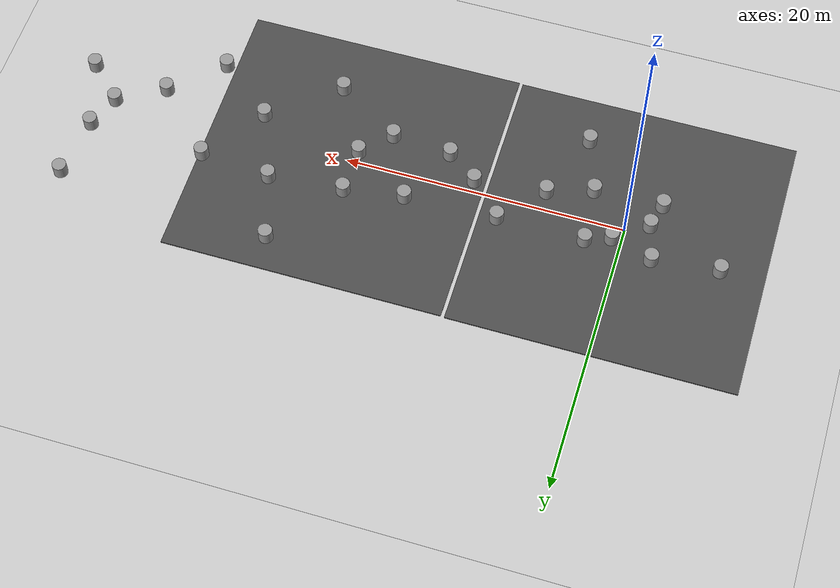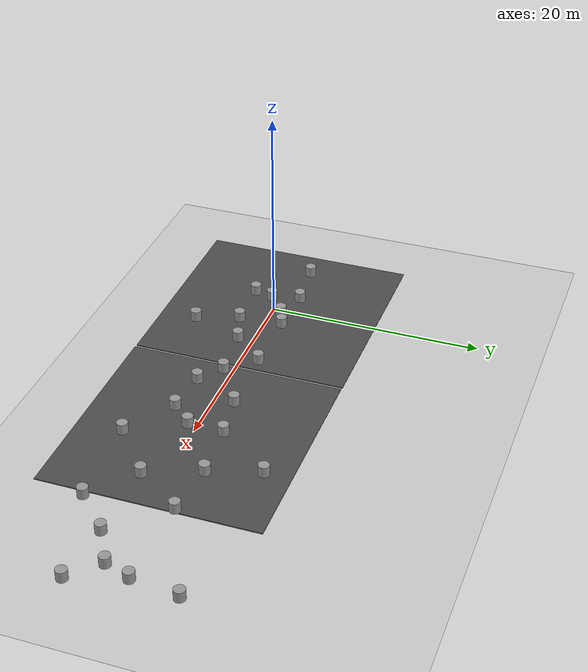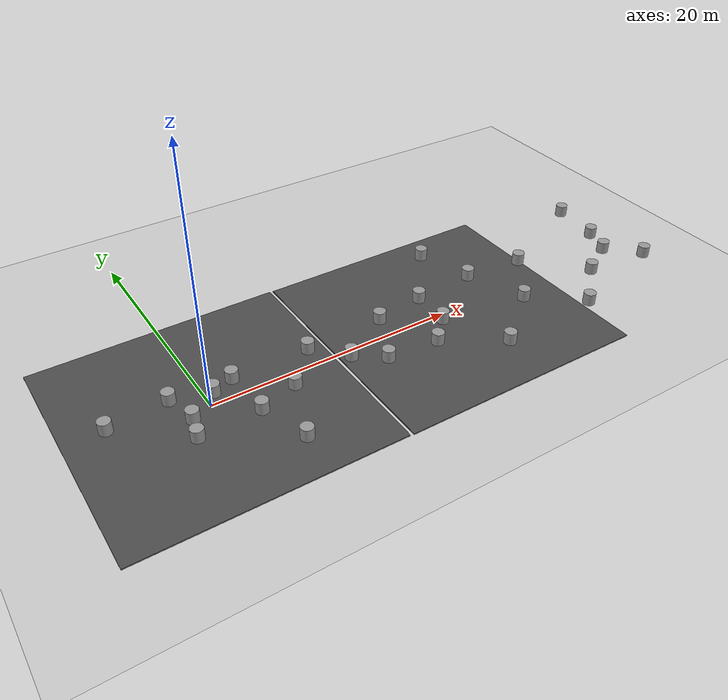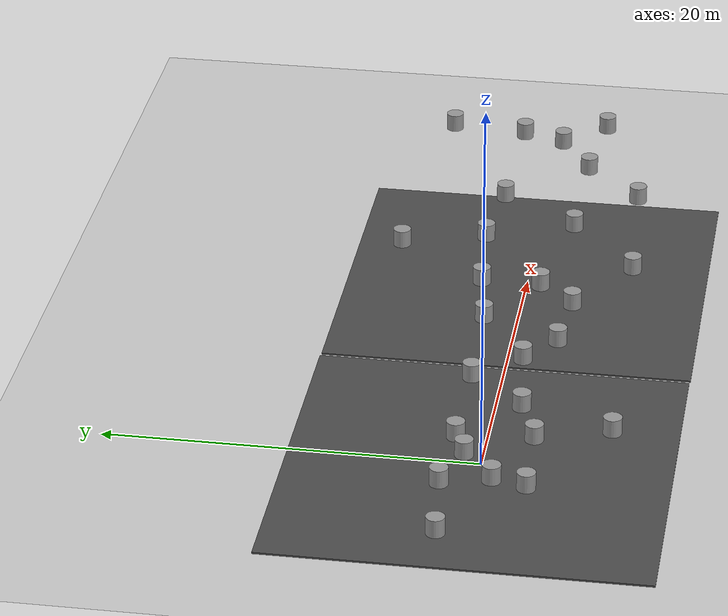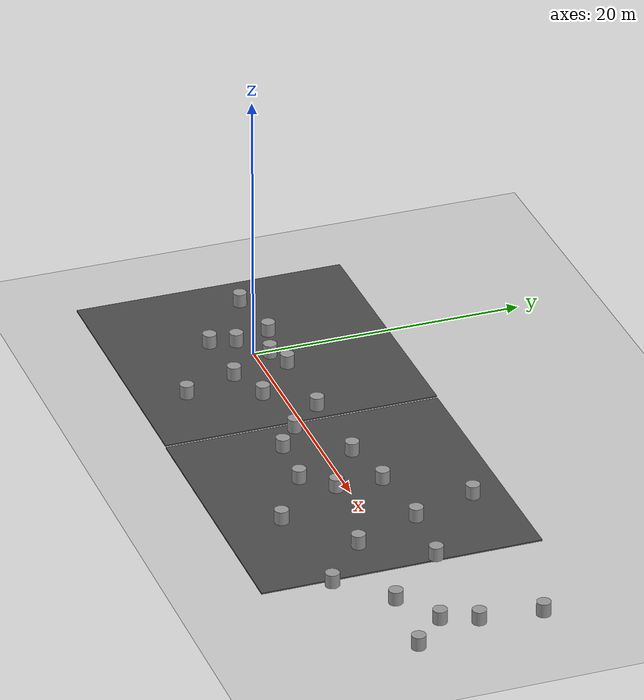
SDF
<sdf version="1.6">
 <world name="default">
  <model name="ground_plane">
   <static>1</static>
   <link name="link">
    <collision name="collision">
     <geometry><plane><normal>0 0 1</normal><size>100 100</size></plane></geometry>
     <surface>
      <contact><collide_bitmask>65535</collide_bitmask></contact>
      <friction><ode><mu>100</mu><mu2>50</mu2></ode></friction>
     </surface>
    </collision>
    <visual name="visual">
     <cast_shadows>0</cast_shadows>
     <geometry><plane><normal>0 0 1</normal><size>100 100</size></plane></geometry>
     <material>
      <script><uri>file://media/materials/scripts/gazebo.material</uri><name>Gazebo/Grey</name></script>
     </material>
    </visual>
   </link>
  </model>
  <model name="asphalt_plane">
   <static>1</static>
   <link name="link">
    <collision name="collision"><geometry><box><size>20 20 0.1</size></box></geometry></collision>
    <visual name="visual">
     <cast_shadows>0</cast_shadows>
     <geometry><box><size>20 20 0.1</size></box></geometry>
     <material>
      <script>
       <uri>model://asphalt_plane/materials/scripts</uri>
       <uri>model://asphalt_plane/materials/textures</uri>
       <name>vrc/asphalt</name>
      </script>
     </material>
    </visual>
   </link>
   <pose>-0.097341 0.103088 0 0 -0 0</pose>
  </model>
  <model name="unit_cylinder">
   <pose>-2.29857 1.87877 0.54999 0 -0 0.000226</pose>
   <link name="link">
    <inertial>
     <mass>1</mass>
     <inertia><ixx>0.145833</ixx><ixy>0</ixy><ixz>0</ixz><iyy>0.145833</iyy><iyz>0</iyz><izz>0.125</izz></inertia>
    </inertial>
    <collision name="collision">
     <geometry><cylinder><radius>0.5</radius><length>1</length></cylinder></geometry>
    </collision>
    <visual name="visual">
     <geometry><cylinder><radius>0.5</radius><length>1</length></cylinder></geometry>
     <material>
      <script><name>Gazebo/Grey</name><uri>file://media/materials/scripts/gazebo.material</uri></script>
     </material>
    </visual>
   </link>
  </model>
  <model name="unit_cylinder_0">
   <pose>-2.10481 -2.5783 0.549998 1e-06 -5e-06 0.000199</pose>
   <link name="link">
    <inertial>
     <mass>1</mass>
     <inertia><ixx>0.145833</ixx><ixy>0</ixy><ixz>0</ixz><iyy>0.145833</iyy><iyz>0</iyz><izz>0.125</izz></inertia>
    </inertial>
    <collision name="collision">
     <geometry><cylinder><radius>0.5</radius><length>1</length></cylinder></geometry>
    </collision>
    <visual name="visual">
     <geometry><cylinder><radius>0.5</radius><length>1</length></cylinder></geometry>
     <material>
      <script><name>Gazebo/Grey</name><uri>file://media/materials/scripts/gazebo.material</uri></script>
     </material>
    </visual>
   </link>
  </model>
  <model name="unit_cylinder_1">
   <pose>2.42535 1.65979 0.549998 4e-06 1e-06 0.000158</pose>
   <link name="link">
    <inertial>
     <mass>1</mass>
     <inertia><ixx>0.145833</ixx><ixy>0</ixy><ixz>0</ixz><iyy>0.145833</iyy><iyz>0</iyz><izz>0.125</izz></inertia>
    </inertial>
    <collision name="collision">
     <geometry><cylinder><radius>0.5</radius><length>1</length></cylinder></geometry>
    </collision>
    <visual name="visual">
     <geometry><cylinder><radius>0.5</radius><length>1</length></cylinder></geometry>
     <material>
      <script><name>Gazebo/Grey</name><uri>file://media/materials/scripts/gazebo.material</uri></script>
     </material>
    </visual>
   </link>
  </model>
  <model name="unit_cylinder_2">
   <pose>2.75314 -2.41556 0.55 0 -0 9.9e-05</pose>
   <link name="link">
    <inertial>
     <mass>1</mass>
     <inertia><ixx>0.145833</ixx><ixy>0</ixy><ixz>0</ixz><iyy>0.145833</iyy><iyz>0</iyz><izz>0.125</izz></inertia>
    </inertial>
    <collision name="collision">
     <geometry><cylinder><radius>0.5</radius><length>1</length></cylinder></geometry>
    </collision>
    <visual name="visual">
     <geometry><cylinder><radius>0.5</radius><length>1</length></cylinder></geometry>
     <material>
      <script><name>Gazebo/Grey</name><uri>file://media/materials/scripts/gazebo.material</uri></script>
     </material>
    </visual>
   </link>
  </model>
  <model name="unit_cylinder_3">
   <pose>-1.63258 -0.739259 0.54999 0 -0 0.000108</pose>
   <link name="link">
    <inertial>
     <mass>1</mass>
     <inertia><ixx>0.145833</ixx><ixy>0</ixy><ixz>0</ixz><iyy>0.145833</iyy><iyz>0</iyz><izz>0.125</izz></inertia>
    </inertial>
    <collision name="collision">
     <geometry><cylinder><radius>0.5</radius><length>1</length></cylinder></geometry>
    </collision>
    <visual name="visual">
     <geometry><cylinder><radius>0.5</radius><length>1</length></cylinder></geometry>
     <material>
      <script><name>Gazebo/Grey</name><uri>file://media/materials/scripts/gazebo.material</uri></script>
     </material>
    </visual>
   </link>
  </model>
  <model name="unit_cylinder_4">
   <pose>4.05995 -6.35999 0.549991 2e-06 -0 -7.6e-05</pose>
   <link name="link">
    <inertial>
     <mass>1</mass>
     <inertia><ixx>0.145833</ixx><ixy>0</ixy><ixz>0</ixz><iyy>0.145833</iyy><iyz>0</iyz><izz>0.125</izz></inertia>
    </inertial>
    <collision name="collision">
     <geometry><cylinder><radius>0.5</radius><length>1</length></cylinder></geometry>
    </collision>
    <visual name="visual">
     <geometry><cylinder><radius>0.5</radius><length>1</length></cylinder></geometry>
     <material>
      <script><name>Gazebo/Grey</name><uri>file://media/materials/scripts/gazebo.material</uri></script>
     </material>
    </visual>
   </link>
  </model>
  <model name="unit_cylinder_5">
   <pose>0.673012 0.983979 0.550002 1e-06 3e-06 0.000134</pose>
   <link name="link">
    <inertial>
     <mass>1</mass>
     <inertia><ixx>0.145833</ixx><ixy>0</ixy><ixz>0</ixz><iyy>0.145833</iyy><iyz>0</iyz><izz>0.125</izz></inertia>
    </inertial>
    <collision name="collision">
     <geometry><cylinder><radius>0.5</radius><length>1</length></cylinder></geometry>
    </collision>
    <visual name="visual">
     <geometry><cylinder><radius>0.5</radius><length>1</length></cylinder></geometry>
     <material>
      <script><name>Gazebo/Grey</name><uri>file://media/materials/scripts/gazebo.material</uri></script>
     </material>
    </visual>
   </link>
  </model>
  <model name="unit_cylinder_6">
   <pose>5.91371 -1.37834 0.549996 -7e-06 -1e-06 7.1e-05</pose>
   <link name="link">
    <inertial>
     <mass>1</mass>
     <inertia><ixx>0.145833</ixx><ixy>0</ixy><ixz>0</ixz><iyy>0.145833</iyy><iyz>0</iyz><izz>0.125</izz></inertia>
    </inertial>
    <collision name="collision">
     <geometry><cylinder><radius>0.5</radius><length>1</length></cylinder></geometry>
    </collision>
    <visual name="visual">
     <geometry><cylinder><radius>0.5</radius><length>1</length></cylinder></geometry>
     <material>
      <script><name>Gazebo/Grey</name><uri>file://media/materials/scripts/gazebo.material</uri></script>
     </material>
    </visual>
   </link>
  </model>
  <model name="unit_cylinder_7">
   <pose>8.66093 1.65139 0.549993 -4e-06 -0 -0.000485</pose>
   <link name="link">
    <inertial>
     <mass>1</mass>
     <inertia><ixx>0.145833</ixx><ixy>0</ixy><ixz>0</ixz><iyy>0.145833</iyy><iyz>0</iyz><izz>0.125</izz></inertia>
    </inertial>
    <collision name="collision">
     <geometry><cylinder><radius>0.5</radius><length>1</length></cylinder></geometry>
    </collision>
    <visual name="visual">
     <geometry><cylinder><radius>0.5</radius><length>1</length></cylinder></geometry>
     <material>
      <script><name>Gazebo/Grey</name><uri>file://media/materials/scripts/gazebo.material</uri></script>
     </material>
    </visual>
   </link>
  </model>
  <model name="unit_cylinder_8">
   <pose>-6.99343 1.38184 0.549998 4e-06 1e-06 -0.000402</pose>
   <link name="link">
    <inertial>
     <mass>1</mass>
     <inertia><ixx>0.145833</ixx><ixy>0</ixy><ixz>0</ixz><iyy>0.145833</iyy><iyz>0</iyz><izz>0.125</izz></inertia>
    </inertial>
    <collision name="collision">
     <geometry><cylinder><radius>0.5</radius><length>1</length></cylinder></geometry>
    </collision>
    <visual name="visual">
     <geometry><cylinder><radius>0.5</radius><length>1</length></cylinder></geometry>
     <material>
      <script><name>Gazebo/Grey</name><uri>file://media/materials/scripts/gazebo.material</uri></script>
     </material>
    </visual>
   </link>
  </model>
  <model name="unit_cylinder_9">
   <pose>10.9698 -0.817129 0.55 -0 1e-06 -0.000395</pose>
   <link name="link">
    <inertial>
     <mass>1</mass>
     <inertia><ixx>0.145833</ixx><ixy>0</ixy><ixz>0</ixz><iyy>0.145833</iyy><iyz>0</iyz><izz>0.125</izz></inertia>
    </inertial>
    <collision name="collision">
     <geometry><cylinder><radius>0.5</radius><length>1</length></cylinder></geometry>
    </collision>
    <visual name="visual">
     <geometry><cylinder><radius>0.5</radius><length>1</length></cylinder></geometry>
     <material>
      <script><name>Gazebo/Grey</name><uri>file://media/materials/scripts/gazebo.material</uri></script>
     </material>
    </visual>
   </link>
  </model>
  <model name="asphalt_plane_0">
   <static>1</static>
   <link name="link">
    <collision name="collision"><geometry><box><size>20 20 0.1</size></box></geometry></collision>
    <visual name="visual">
     <cast_shadows>0</cast_shadows>
     <geometry><box><size>20 20 0.1</size></box></geometry>
     <material>
      <script>
       <uri>model://asphalt_plane/materials/scripts</uri>
       <uri>model://asphalt_plane/materials/textures</uri>
       <name>vrc/asphalt</name>
      </script>
     </material>
    </visual>
   </link>
   <pose>20.1677 0.054455 0 0 -0 0</pose>
  </model>
  <model name="unit_cylinder_10">
   <pose>15.2464 1.85956 0.549997 6e-06 2e-06 8.7e-05</pose>
   <link name="link">
    <inertial>
     <mass>1</mass>
     <inertia><ixx>0.145833</ixx><ixy>0</ixy><ixz>0</ixz><iyy>0.145833</iyy><iyz>0</iyz><izz>0.125</izz></inertia>
    </inertial>
    <collision name="collision">
     <geometry><cylinder><radius>0.5</radius><length>1</length></cylinder></geometry>
    </collision>
    <visual name="visual">
     <geometry><cylinder><radius>0.5</radius><length>1</length></cylinder></geometry>
     <material>
      <script><name>Gazebo/Grey</name><uri>file://media/materials/scripts/gazebo.material</uri></script>
     </material>
    </visual>
   </link>
  </model>
  <model name="unit_cylinder_11">
   <pose>17.449 -2.78219 0.550001 0 1e-06 0.000253</pose>
   <link name="link">
    <inertial>
     <mass>1</mass>
     <inertia><ixx>0.145833</ixx><ixy>0</ixy><ixz>0</ixz><iyy>0.145833</iyy><iyz>0</iyz><izz>0.125</izz></inertia>
    </inertial>
    <collision name="collision">
     <geometry><cylinder><radius>0.5</radius><length>1</length></cylinder></geometry>
    </collision>
    <visual name="visual">
     <geometry><cylinder><radius>0.5</radius><length>1</length></cylinder></geometry>
     <material>
      <script><name>Gazebo/Grey</name><uri>file://media/materials/scripts/gazebo.material</uri></script>
     </material>
    </visual>
   </link>
  </model>
  <model name="unit_cylinder_12">
   <pose>19.4846 2.53262 0.549997 6e-06 3e-06 7.7e-05</pose>
   <link name="link">
    <inertial>
     <mass>1</mass>
     <inertia><ixx>0.145833</ixx><ixy>0</ixy><ixz>0</ixz><iyy>0.145833</iyy><iyz>0</iyz><izz>0.125</izz></inertia>
    </inertial>
    <collision name="collision">
     <geometry><cylinder><radius>0.5</radius><length>1</length></cylinder></geometry>
    </collision>
    <visual name="visual">
     <geometry><cylinder><radius>0.5</radius><length>1</length></cylinder></geometry>
     <material>
      <script><name>Gazebo/Grey</name><uri>file://media/materials/scripts/gazebo.material</uri></script>
     </material>
    </visual>
   </link>
  </model>
  <model name="unit_cylinder_13">
   <pose>19.4058 -0.787666 0.549991 -1e-06 -2e-06 0.000177</pose>
   <link name="link">
    <inertial>
     <mass>1</mass>
     <inertia><ixx>0.145833</ixx><ixy>0</ixy><ixz>0</ixz><iyy>0.145833</iyy><iyz>0</iyz><izz>0.125</izz></inertia>
    </inertial>
    <collision name="collision">
     <geometry><cylinder><radius>0.5</radius><length>1</length></cylinder></geometry>
    </collision>
    <visual name="visual">
     <geometry><cylinder><radius>0.5</radius><length>1</length></cylinder></geometry>
     <material>
      <script><name>Gazebo/Grey</name><uri>file://media/materials/scripts/gazebo.material</uri></script>
     </material>
    </visual>
   </link>
  </model>
  <model name="unit_cylinder_14">
   <pose>13.1817 -2.45769 0.550001 -3e-06 -0 -0.000224</pose>
   <link name="link">
    <inertial>
     <mass>1</mass>
     <inertia><ixx>0.145833</ixx><ixy>0</ixy><ixz>0</ixz><iyy>0.145833</iyy><iyz>0</iyz><izz>0.125</izz></inertia>
    </inertial>
    <collision name="collision">
     <geometry><cylinder><radius>0.5</radius><length>1</length></cylinder></geometry>
    </collision>
    <visual name="visual">
     <geometry><cylinder><radius>0.5</radius><length>1</length></cylinder></geometry>
     <material>
      <script><name>Gazebo/Grey</name><uri>file://media/materials/scripts/gazebo.material</uri></script>
     </material>
    </visual>
   </link>
  </model>
  <model name="unit_cylinder_15">
   <pose>26.7754 -1.87461 0.550001 -2e-06 -1e-06 -0.00013</pose>
   <link name="link">
    <inertial>
     <mass>1</mass>
     <inertia><ixx>0.145833</ixx><ixy>0</ixy><ixz>0</ixz><iyy>0.145833</iyy><iyz>0</iyz><izz>0.125</izz></inertia>
    </inertial>
    <collision name="collision">
     <geometry><cylinder><radius>0.5</radius><length>1</length></cylinder></geometry>
    </collision>
    <visual name="visual">
     <geometry><cylinder><radius>0.5</radius><length>1</length></cylinder></geometry>
     <material>
      <script><name>Gazebo/Grey</name><uri>file://media/materials/scripts/gazebo.material</uri></script>
     </material>
    </visual>
   </link>
  </model>
  <model name="unit_cylinder_16">
   <pose>24.8239 2.98261 0.54999 0 -0 5.9e-05</pose>
   <link name="link">
    <inertial>
     <mass>1</mass>
     <inertia><ixx>0.145833</ixx><ixy>0</ixy><ixz>0</ixz><iyy>0.145833</iyy><iyz>0</iyz><izz>0.125</izz></inertia>
    </inertial>
    <collision name="collision">
     <geometry><cylinder><radius>0.5</radius><length>1</length></cylinder></geometry>
    </collision>
    <visual name="visual">
     <geometry><cylinder><radius>0.5</radius><length>1</length></cylinder></geometry>
     <material>
      <script><name>Gazebo/Grey</name><uri>file://media/materials/scripts/gazebo.material</uri></script>
     </material>
    </visual>
   </link>
  </model>
  <model name="unit_cylinder_17">
   <pose>29.9318 2.51271 0.55 1e-06 -0 0.000136</pose>
   <link name="link">
    <inertial>
     <mass>1</mass>
     <inertia><ixx>0.145833</ixx><ixy>0</ixy><ixz>0</ixz><iyy>0.145833</iyy><iyz>0</iyz><izz>0.125</izz></inertia>
    </inertial>
    <collision name="collision">
     <geometry><cylinder><radius>0.5</radius><length>1</length></cylinder></geometry>
    </collision>
    <visual name="visual">
     <geometry><cylinder><radius>0.5</radius><length>1</length></cylinder></geometry>
     <material>
      <script><name>Gazebo/Grey</name><uri>file://media/materials/scripts/gazebo.material</uri></script>
     </material>
    </visual>
   </link>
  </model>
  <model name="unit_cylinder_18">
   <pose>34.2132 -1.94793 0.550002 2e-06 3e-06 -0.000229</pose>
   <link name="link">
    <inertial>
     <mass>1</mass>
     <inertia><ixx>0.145833</ixx><ixy>0</ixy><ixz>0</ixz><iyy>0.145833</iyy><iyz>0</iyz><izz>0.125</izz></inertia>
    </inertial>
    <collision name="collision">
     <geometry><cylinder><radius>0.5</radius><length>1</length></cylinder></geometry>
    </collision>
    <visual name="visual">
     <geometry><cylinder><radius>0.5</radius><length>1</length></cylinder></geometry>
     <material>
      <script><name>Gazebo/Grey</name><uri>file://media/materials/scripts/gazebo.material</uri></script>
     </material>
    </visual>
   </link>
  </model>
  <model name="unit_cylinder_19">
   <pose>38.88 6.72309 0.55 0 -0 5.6e-05</pose>
   <link name="link">
    <inertial>
     <mass>1</mass>
     <inertia><ixx>0.145833</ixx><ixy>0</ixy><ixz>0</ixz><iyy>0.145833</iyy><iyz>0</iyz><izz>0.125</izz></inertia>
    </inertial>
    <collision name="collision">
     <geometry><cylinder><radius>0.5</radius><length>1</length></cylinder></geometry>
    </collision>
    <visual name="visual">
     <geometry><cylinder><radius>0.5</radius><length>1</length></cylinder></geometry>
     <material>
      <script><name>Gazebo/Grey</name><uri>file://media/materials/scripts/gazebo.material</uri></script>
     </material>
    </visual>
   </link>
  </model>
  <model name="unit_cylinder_21">
   <pose>38.3535 2.37352 0.550001 -0 3e-06 6.5e-05</pose>
   <link name="link">
    <inertial>
     <mass>1</mass>
     <inertia><ixx>0.145833</ixx><ixy>0</ixy><ixz>0</ixz><iyy>0.145833</iyy><iyz>0</iyz><izz>0.125</izz></inertia>
    </inertial>
    <collision name="collision">
     <geometry><cylinder><radius>0.5</radius><length>1</length></cylinder></geometry>
    </collision>
    <visual name="visual">
     <geometry><cylinder><radius>0.5</radius><length>1</length></cylinder></geometry>
     <material>
      <script><name>Gazebo/Grey</name><uri>file://media/materials/scripts/gazebo.material</uri></script>
     </material>
    </visual>
   </link>
  </model>
  <model name="unit_cylinder_23">
   <pose>30.7926 -5.17603 0.550003 -6e-06 -2e-06 -0.000292</pose>
   <link name="link">
    <inertial>
     <mass>1</mass>
     <inertia><ixx>0.145833</ixx><ixy>0</ixy><ixz>0</ixz><iyy>0.145833</iyy><iyz>0</iyz><izz>0.125</izz></inertia>
    </inertial>
    <collision name="collision">
     <geometry><cylinder><radius>0.5</radius><length>1</length></cylinder></geometry>
    </collision>
    <visual name="visual">
     <geometry><cylinder><radius>0.5</radius><length>1</length></cylinder></geometry>
     <material>
      <script><name>Gazebo/Grey</name><uri>file://media/materials/scripts/gazebo.material</uri></script>
     </material>
    </visual>
   </link>
  </model>
  <model name="unit_cylinder_26">
   <pose>37.4484 -0.049615 0.549997 1e-06 -5e-06 5.5e-05</pose>
   <link name="link">
    <inertial>
     <mass>1</mass>
     <inertia><ixx>0.145833</ixx><ixy>0</ixy><ixz>0</ixz><iyy>0.145833</iyy><iyz>0</iyz><izz>0.125</izz></inertia>
    </inertial>
    <collision name="collision">
     <geometry><cylinder><radius>0.5</radius><length>1</length></cylinder></geometry>
    </collision>
    <visual name="visual">
     <geometry><cylinder><radius>0.5</radius><length>1</length></cylinder></geometry>
     <material>
      <script><name>Gazebo/Grey</name><uri>file://media/materials/scripts/gazebo.material</uri></script>
     </material>
    </visual>
   </link>
  </model>
  <model name="unit_cylinder_27">
   <pose>22.0879 -5.69033 0.54999 0 0 -5.4e-05</pose>
   <link name="link">
    <inertial>
     <mass>1</mass>
     <inertia><ixx>0.145833</ixx><ixy>0</ixy><ixz>0</ixz><iyy>0.145833</iyy><iyz>0</iyz><izz>0.125</izz></inertia>
    </inertial>
    <collision name="collision">
     <geometry><cylinder><radius>0.5</radius><length>1</length></cylinder></geometry>
    </collision>
    <visual name="visual">
     <geometry><cylinder><radius>0.5</radius><length>1</length></cylinder></geometry>
     <material>
      <script><name>Gazebo/Grey</name><uri>file://media/materials/scripts/gazebo.material</uri></script>
     </material>
    </visual>
   </link>
  </model>
  <model name="unit_cylinder_28">
   <pose>23.3751 7.64501 0.54999 -0 -0 -0.000333</pose>
   <link name="link">
    <inertial>
     <mass>1</mass>
     <inertia><ixx>0.145833</ixx><ixy>0</ixy><ixz>0</ixz><iyy>0.145833</iyy><iyz>0</iyz><izz>0.125</izz></inertia>
    </inertial>
    <collision name="collision">
     <geometry><cylinder><radius>0.5</radius><length>1</length></cylinder></geometry>
    </collision>
    <visual name="visual">
     <geometry><cylinder><radius>0.5</radius><length>1</length></cylinder></geometry>
     <material>
      <script><name>Gazebo/Grey</name><uri>file://media/materials/scripts/gazebo.material</uri></script>
     </material>
    </visual>
   </link>
  </model>
  <model name="unit_cylinder_34">
   <pose>39.9012 -2.46777 0.550003 -1e-06 -5e-06 -5.2e-05</pose>
   <link name="link">
    <inertial>
     <mass>1</mass>
     <inertia><ixx>0.145833</ixx><ixy>0</ixy><ixz>0</ixz><iyy>0.145833</iyy><iyz>0</iyz><izz>0.125</izz></inertia>
    </inertial>
    <collision name="collision">
     <geometry><cylinder><radius>0.5</radius><length>1</length></cylinder></geometry>
    </collision>
    <visual name="visual">
     <geometry><cylinder><radius>0.5</radius><length>1</length></cylinder></geometry>
     <material>
      <script><name>Gazebo/Grey</name><uri>file://media/materials/scripts/gazebo.material</uri></script>
     </material>
    </visual>
   </link>
  </model>
 </world>
</sdf>
